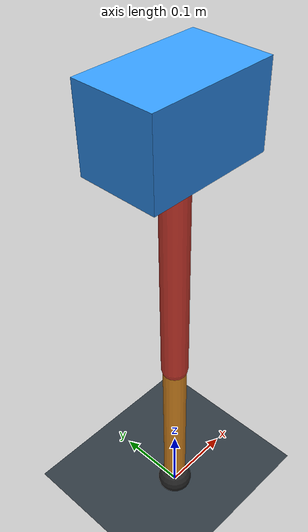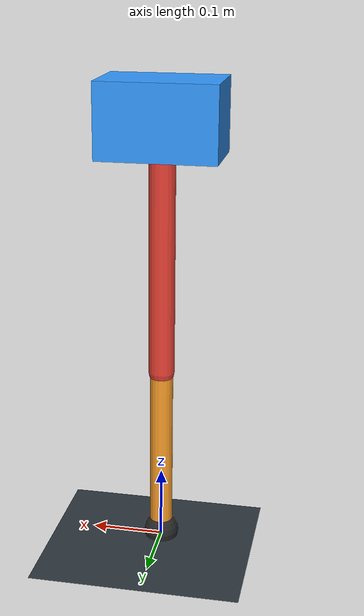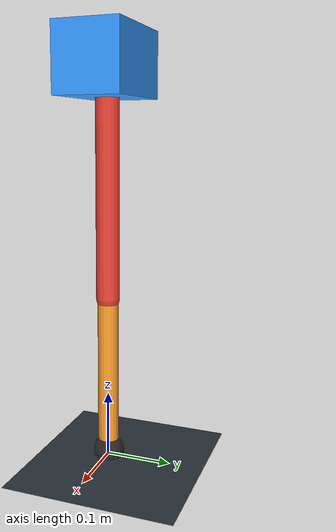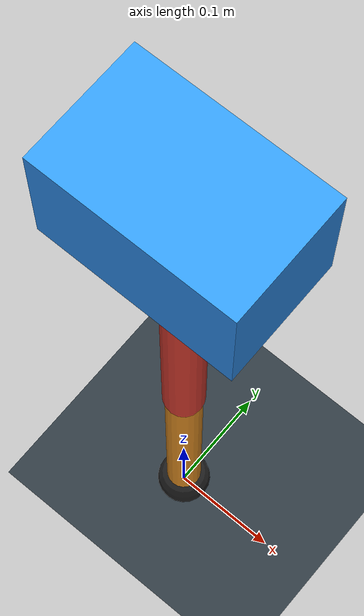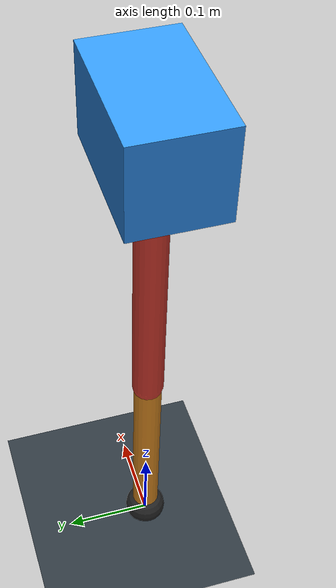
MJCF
<mujoco model="single_axis_two_bar">
  <compiler angle="radian" inertiafromgeom="true"/>
  <option timestep="0.001" integrator="implicitfast" gravity="0 0 -9.81"/>
  <default>
    <joint damping="0.08"/>
    <geom friction="1.2 0.01 0.0001" condim="3"/>
  </default>
  <worldbody>
    <geom name="floor" type="plane" size="5 5 0.1" rgba="0.18 0.22 0.25 1"/>
    <body name="carriage" pos="0 0 0.6027796177247172">
      <joint name="pole_slide" type="slide" axis="0 0 1"/>
      <geom name="payload" type="box" size="0.08 0.05 0.05" mass="2.998423552669716" rgba="0.2 0.6 1 1"/>
      <body name="thigh" pos="0 0 0">
        <joint name="hip" type="hinge" axis="0 1 0"/>
        <geom name="thigh_link" type="capsule" fromto="0 0 0 0 0 -0.3495898383069961" size="0.018" mass="0.24908737921588386" rgba="0.9 0.25 0.2 1"/>
        <body name="shank" pos="0 0 -0.3495898383069961">
          <joint name="knee" type="hinge" axis="0 1 0"/>
          <geom name="shank_link" type="capsule" fromto="0 0 0 0 0 -0.24605925213085666" size="0.016" mass="0.1753204685293878" rgba="0.95 0.6 0.15 1"/>
          <geom name="foot" type="sphere" pos="0 0 -0.24605925213085666" size="0.025" mass="0.03" rgba="0.15 0.15 0.15 1"/>
          <site name="toe" pos="0 0 -0.24605925213085666" size="0.008"/>
        </body>
      </body>
    </body>
  </worldbody>
  <actuator>
    <motor name="hip_motor" joint="hip" ctrlrange="-21.933063508396444 21.933063508396444"/>
    <motor name="knee_motor" joint="knee" ctrlrange="-137.4105581745158 137.4105581745158"/>
  </actuator>
</mujoco>
